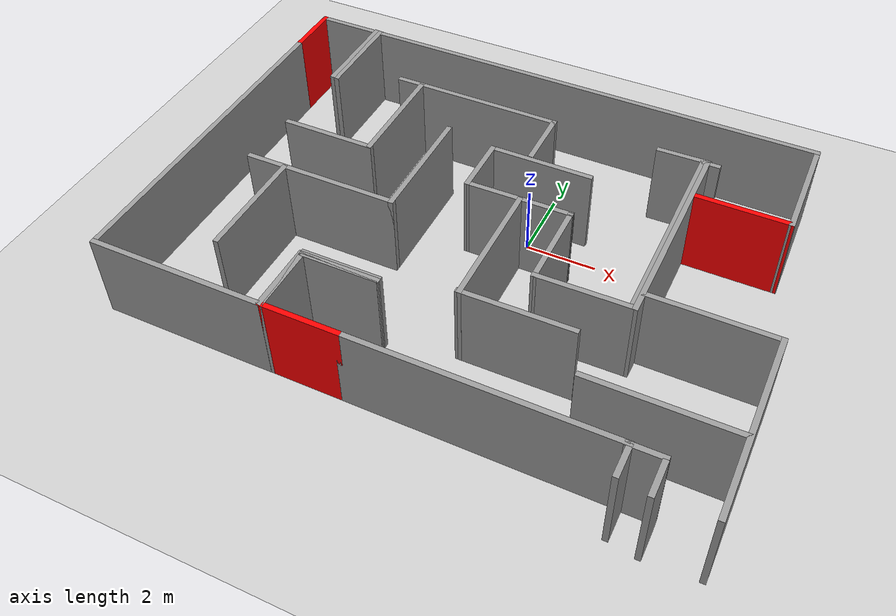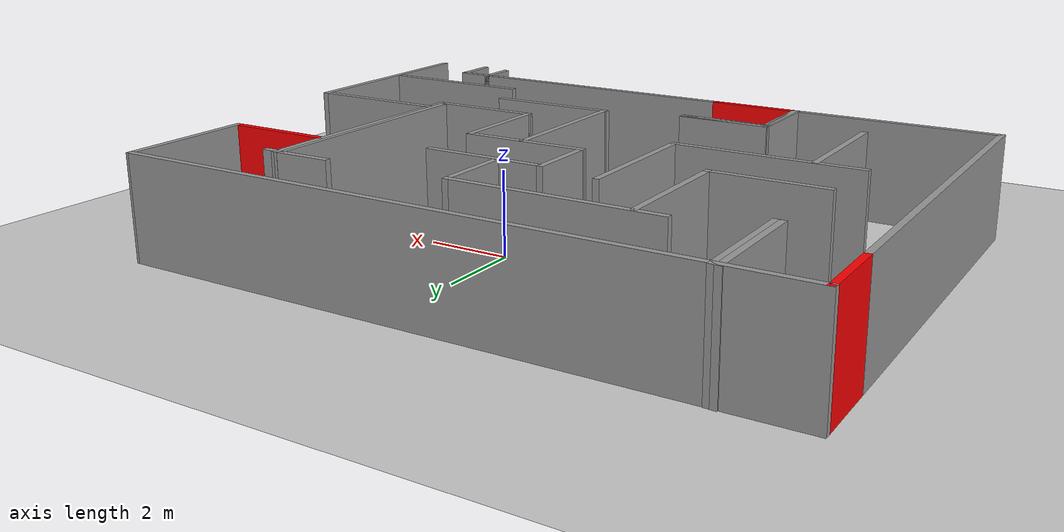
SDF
<sdf version="1.7">
 <world name="default">
  <light name="sun" type="directional">
   <pose>0 0 10 0 -0 0</pose>
   <diffuse>0.8 0.8 0.8 1</diffuse>
   <specular>0.2 0.2 0.2 1</specular>
   <attenuation>
    <range>1000</range>
    <constant>0.9</constant>
    <linear>0.01</linear>
    <quadratic>0.001</quadratic>
   </attenuation>
   <direction>-0.5 0.1 -0.9</direction>
   <spot><inner_angle>0</inner_angle><outer_angle>0</outer_angle><falloff>0</falloff></spot>
  </light>
  <model name="ground_plane">
   <static>1</static>
   <link name="link">
    <collision name="collision">
     <geometry><plane><normal>0 0 1</normal><size>100 100</size></plane></geometry>
     <surface>
      <contact><collide_bitmask>65535</collide_bitmask></contact>
      <friction><ode><mu>100</mu><mu2>50</mu2></ode></friction>
     </surface>
    </collision>
    <visual name="visual">
     <cast_shadows>0</cast_shadows>
     <geometry><plane><normal>0 0 1</normal><size>100 100</size></plane></geometry>
     <material>
      <script><uri>file://media/materials/scripts/gazebo.material</uri><name>Gazebo/Grey</name></script>
     </material>
    </visual>
   </link>
  </model>
  <gravity>0 0 -9.8</gravity>
  <magnetic_field>6e-06 2.3e-05 -4.2e-05</magnetic_field>
  <atmosphere type="adiabatic"/>
  <physics type="ode">
   <max_step_size>0.001</max_step_size>
   <real_time_factor>1</real_time_factor>
   <real_time_update_rate>1000</real_time_update_rate>
  </physics>
  <scene><ambient>0.4 0.4 0.4 1</ambient><background>0.7 0.7 0.7 1</background><shadows>1</shadows></scene>
  <spherical_coordinates>
   <surface_model>EARTH_WGS84</surface_model>
   <latitude_deg>0</latitude_deg>
   <longitude_deg>0</longitude_deg>
   <elevation>0</elevation>
   <heading_deg>0</heading_deg>
  </spherical_coordinates>
  <model name="Untitled5_0">
   <pose>-0.778124 -1.64772 0 0 -0 0</pose>
   <link name="Wall_1">
    <collision name="Wall_1_Collision">
     <geometry><box><size>3.06996 0.15 2.5</size></box></geometry>
     <pose>0 0 1.25 0 -0 0</pose>
    </collision>
    <visual name="Wall_1_Visual">
     <pose>0 0 1.25 0 -0 0</pose>
     <geometry><box><size>3.06996 0.15 2.5</size></box></geometry>
     <material>
      <script><uri>file://media/materials/scripts/gazebo.material</uri><name>Gazebo/Grey</name></script>
      <ambient>1 1 1 1</ambient>
     </material>
     <meta><layer>0</layer></meta>
    </visual>
    <pose>0.761069 0.854205 0 0 -0 0.011979</pose>
   </link>
   <link name="Wall_11">
    <collision name="Wall_11_Collision">
     <geometry><box><size>1.75 0.15 2.5</size></box></geometry>
     <pose>0 0 1.25 0 -0 0</pose>
    </collision>
    <visual name="Wall_11_Visual">
     <pose>0 0 1.25 0 -0 0</pose>
     <geometry><box><size>1.75 0.15 2.5</size></box></geometry>
     <material>
      <script><uri>file://media/materials/scripts/gazebo.material</uri><name>Gazebo/Grey</name></script>
      <ambient>1 0 0 1</ambient>
     </material>
     <meta><layer>0</layer></meta>
    </visual>
    <pose>-8.19409 5.2372 0 0 -0 -1.5708</pose>
   </link>
   <link name="Wall_13">
    <collision name="Wall_13_Collision">
     <geometry><box><size>9.75 0.15 2.5</size></box></geometry>
     <pose>0 0 1.25 0 -0 0</pose>
    </collision>
    <visual name="Wall_13_Visual">
     <pose>0 0 1.25 0 -0 0</pose>
     <geometry><box><size>9.75 0.15 2.5</size></box></geometry>
     <material>
      <script><uri>file://media/materials/scripts/gazebo.material</uri><name>Gazebo/Grey</name></script>
      <ambient>1 1 1 1</ambient>
     </material>
     <meta><layer>0</layer></meta>
    </visual>
    <pose>-8.19409 -0.362796 0 0 -0 -1.5708</pose>
   </link>
   <link name="Wall_14">
    <collision name="Wall_14_Collision">
     <geometry><box><size>5 0.15 2.5</size></box></geometry>
     <pose>0 0 1.25 0 -0 0</pose>
    </collision>
    <visual name="Wall_14_Visual">
     <pose>0 0 1.25 0 -0 0</pose>
     <geometry><box><size>5 0.15 2.5</size></box></geometry>
     <material>
      <script><uri>file://media/materials/scripts/gazebo.material</uri><name>Gazebo/Grey</name></script>
      <ambient>1 1 1 1</ambient>
     </material>
     <meta><layer>0</layer></meta>
    </visual>
    <pose>-5.76909 -5.1628 0 0 -0 0</pose>
   </link>
   <link name="Wall_16">
    <collision name="Wall_16_Collision">
     <geometry><box><size>1.75 0.15 2.5</size></box></geometry>
     <pose>0 0 1.25 0 -0 0</pose>
    </collision>
    <visual name="Wall_16_Visual">
     <pose>0 0 1.25 0 -0 0</pose>
     <geometry><box><size>1.75 0.15 2.5</size></box></geometry>
     <material>
      <script><uri>file://media/materials/scripts/gazebo.material</uri><name>Gazebo/Grey</name></script>
      <ambient>1 1 1 1</ambient>
     </material>
     <meta><layer>0</layer></meta>
    </visual>
    <pose>-0.698911 1.63671 0 0 -0 1.5708</pose>
   </link>
   <link name="Wall_17">
    <collision name="Wall_17_Collision">
     <geometry><box><size>3 0.15 2.5</size></box></geometry>
     <pose>0 0 1.25 0 -0 0</pose>
    </collision>
    <visual name="Wall_17_Visual">
     <pose>0 0 1.25 0 -0 0</pose>
     <geometry><box><size>3 0.15 2.5</size></box></geometry>
     <material>
      <script><uri>file://media/materials/scripts/gazebo.material</uri><name>Gazebo/Grey</name></script>
      <ambient>1 1 1 1</ambient>
     </material>
     <meta><layer>0</layer></meta>
    </visual>
    <pose>0.726089 2.43671 0 0 -0 0</pose>
   </link>
   <link name="Wall_19">
    <collision name="Wall_19_Collision">
     <geometry><box><size>1.75 0.15 2.5</size></box></geometry>
     <pose>0 0 1.25 0 -0 0</pose>
    </collision>
    <visual name="Wall_19_Visual">
     <pose>0 0 1.25 0 -0 0</pose>
     <geometry><box><size>1.75 0.15 2.5</size></box></geometry>
     <material>
      <script><uri>file://media/materials/scripts/gazebo.material</uri><name>Gazebo/Grey</name></script>
      <ambient>1 1 1 1</ambient>
     </material>
     <meta><layer>0</layer></meta>
    </visual>
    <pose>0.387186 3.40099 0 0 -0 1.5708</pose>
   </link>
   <link name="Wall_2">
    <collision name="Wall_2_Collision">
     <geometry><box><size>2.5 0.15 2.5</size></box></geometry>
     <pose>0 0 1.25 0 -0 0</pose>
    </collision>
    <visual name="Wall_2_Visual">
     <pose>0 0 1.25 0 -0 0</pose>
     <geometry><box><size>2.5 0.15 2.5</size></box></geometry>
     <material>
      <script><uri>file://media/materials/scripts/gazebo.material</uri><name>Gazebo/Grey</name></script>
      <ambient>1 1 1 1</ambient>
     </material>
     <meta><layer>0</layer></meta>
    </visual>
    <pose>2.22105 -0.338285 0 0 -0 -1.5708</pose>
   </link>
   <link name="Wall_20">
    <collision name="Wall_20_Collision">
     <geometry><box><size>5 0.15 2.5</size></box></geometry>
     <pose>0 0 1.25 0 -0 0</pose>
    </collision>
    <visual name="Wall_20_Visual">
     <pose>0 0 1.25 0 -0 0</pose>
     <geometry><box><size>5 0.15 2.5</size></box></geometry>
     <material>
      <script><uri>file://media/materials/scripts/gazebo.material</uri><name>Gazebo/Grey</name></script>
      <ambient>1 1 1 1</ambient>
     </material>
     <meta><layer>0</layer></meta>
    </visual>
    <pose>-2.03781 4.20099 0 0 -0 3.14159</pose>
   </link>
   <link name="Wall_22">
    <collision name="Wall_22_Collision">
     <geometry><box><size>3.25 0.15 2.5</size></box></geometry>
     <pose>0 0 1.25 0 -0 0</pose>
    </collision>
    <visual name="Wall_22_Visual">
     <pose>0 0 1.25 0 -0 0</pose>
     <geometry><box><size>3.25 0.15 2.5</size></box></geometry>
     <material>
      <script><uri>file://media/materials/scripts/gazebo.material</uri><name>Gazebo/Grey</name></script>
      <ambient>1 1 1 1</ambient>
     </material>
     <meta><layer>0</layer></meta>
    </visual>
    <pose>-3.79281 2.59099 0 0 -0 -1.5708</pose>
   </link>
   <link name="Wall_23">
    <collision name="Wall_23_Collision">
     <geometry><box><size>2.75 0.15 2.5</size></box></geometry>
     <pose>0 0 1.25 0 -0 0</pose>
    </collision>
    <visual name="Wall_23_Visual">
     <pose>0 0 1.25 0 -0 0</pose>
     <geometry><box><size>2.75 0.15 2.5</size></box></geometry>
     <material>
      <script><uri>file://media/materials/scripts/gazebo.material</uri><name>Gazebo/Grey</name></script>
      <ambient>1 1 1 1</ambient>
     </material>
     <meta><layer>0</layer></meta>
    </visual>
    <pose>-5.09281 1.04099 0 0 -0 3.14159</pose>
   </link>
   <link name="Wall_25">
    <collision name="Wall_25_Collision">
     <geometry><box><size>3.5 0.15 2.5</size></box></geometry>
     <pose>0 0 1.25 0 -0 0</pose>
    </collision>
    <visual name="Wall_25_Visual">
     <pose>0 0 1.25 0 -0 0</pose>
     <geometry><box><size>3.5 0.15 2.5</size></box></geometry>
     <material>
      <script><uri>file://media/materials/scripts/gazebo.material</uri><name>Gazebo/Grey</name></script>
      <ambient>1 1 1 1</ambient>
     </material>
     <meta><layer>0</layer></meta>
    </visual>
    <pose>-2.17281 1.00599 0 0 -0 -1.5708</pose>
   </link>
   <link name="Wall_26">
    <collision name="Wall_26_Collision">
     <geometry><box><size>4.5 0.15 2.5</size></box></geometry>
     <pose>0 0 1.25 0 -0 0</pose>
    </collision>
    <visual name="Wall_26_Visual">
     <pose>0 0 1.25 0 -0 0</pose>
     <geometry><box><size>4.5 0.15 2.5</size></box></geometry>
     <material>
      <script><uri>file://media/materials/scripts/gazebo.material</uri><name>Gazebo/Grey</name></script>
      <ambient>1 1 1 1</ambient>
     </material>
     <meta><layer>0</layer></meta>
    </visual>
    <pose>-4.34781 -0.669006 0 0 -0 3.14159</pose>
   </link>
   <link name="Wall_28">
    <collision name="Wall_28_Collision">
     <geometry><box><size>2.75 0.15 2.5</size></box></geometry>
     <pose>0 0 1.25 0 -0 0</pose>
    </collision>
    <visual name="Wall_28_Visual">
     <pose>0 0 1.25 0 -0 0</pose>
     <geometry><box><size>2.75 0.15 2.5</size></box></geometry>
     <material>
      <script><uri>file://media/materials/scripts/gazebo.material</uri><name>Gazebo/Grey</name></script>
      <ambient>1 1 1 1</ambient>
     </material>
     <meta><layer>0</layer></meta>
    </visual>
    <pose>-6.358 4.76493 0 0 -0 -1.5708</pose>
   </link>
   <link name="Wall_3">
    <collision name="Wall_3_Collision">
     <geometry><box><size>2.69606 0.15 2.5</size></box></geometry>
     <pose>0 0 1.25 0 -0 0</pose>
    </collision>
    <visual name="Wall_3_Visual">
     <pose>0 0 1.25 0 -0 0</pose>
     <geometry><box><size>2.69606 0.15 2.5</size></box></geometry>
     <material>
      <script><uri>file://media/materials/scripts/gazebo.material</uri><name>Gazebo/Grey</name></script>
      <ambient>1 1 1 1</ambient>
     </material>
     <meta><layer>0</layer></meta>
    </visual>
    <pose>3.49399 -1.49799 0 0 -0 0.012015</pose>
   </link>
   <link name="Wall_30">
    <collision name="Wall_30_Collision">
     <geometry><box><size>2 0.15 2.5</size></box></geometry>
     <pose>0 0 1.25 0 -0 0</pose>
    </collision>
    <visual name="Wall_30_Visual">
     <pose>0 0 1.25 0 -0 0</pose>
     <geometry><box><size>2 0.15 2.5</size></box></geometry>
     <material>
      <script><uri>file://media/materials/scripts/gazebo.material</uri><name>Gazebo/Grey</name></script>
      <ambient>1 1 1 1</ambient>
     </material>
     <meta><layer>0</layer></meta>
    </visual>
    <pose>-3.24477 -4.23474 0 0 -0 -1.5708</pose>
   </link>
   <link name="Wall_32">
    <collision name="Wall_32_Collision">
     <geometry><box><size>2.25 0.15 2.5</size></box></geometry>
     <pose>0 0 1.25 0 -0 0</pose>
    </collision>
    <visual name="Wall_32_Visual">
     <pose>0 0 1.25 0 -0 0</pose>
     <geometry><box><size>2.25 0.15 2.5</size></box></geometry>
     <material>
      <script><uri>file://media/materials/scripts/gazebo.material</uri><name>Gazebo/Grey</name></script>
      <ambient>1 1 1 1</ambient>
     </material>
     <meta><layer>0</layer></meta>
    </visual>
    <pose>-2.19477 -3.30974 0 0 -0 0</pose>
   </link>
   <link name="Wall_34">
    <collision name="Wall_34_Collision">
     <geometry><box><size>2.25 0.15 2.5</size></box></geometry>
     <pose>0 0 1.25 0 -0 0</pose>
    </collision>
    <visual name="Wall_34_Visual">
     <pose>0 0 1.25 0 -0 0</pose>
     <geometry><box><size>2.25 0.15 2.5</size></box></geometry>
     <material>
      <script><uri>file://media/materials/scripts/gazebo.material</uri><name>Gazebo/Grey</name></script>
      <ambient>1 0 0 1</ambient>
     </material>
     <meta><layer>0</layer></meta>
    </visual>
    <pose>-2.19477 -5.15974 0 0 -0 0</pose>
   </link>
   <link name="Wall_36">
    <collision name="Wall_36_Collision">
     <geometry><box><size>7.25 0.15 2.5</size></box></geometry>
     <pose>0 0 1.25 0 -0 0</pose>
    </collision>
    <visual name="Wall_36_Visual">
     <pose>0 0 1.25 0 -0 0</pose>
     <geometry><box><size>7.25 0.15 2.5</size></box></geometry>
     <material>
      <script><uri>file://media/materials/scripts/gazebo.material</uri><name>Gazebo/Grey</name></script>
      <ambient>1 1 1 1</ambient>
     </material>
     <meta><layer>0</layer></meta>
    </visual>
    <pose>2.40523 -5.15974 0 0 -0 0</pose>
   </link>
   <link name="Wall_38">
    <collision name="Wall_38_Collision">
     <geometry><box><size>3.75 0.15 2.5</size></box></geometry>
     <pose>0 0 1.25 0 -0 0</pose>
    </collision>
    <visual name="Wall_38_Visual">
     <pose>0 0 1.25 0 -0 0</pose>
     <geometry><box><size>3.75 0.15 2.5</size></box></geometry>
     <material>
      <script><uri>file://media/materials/scripts/gazebo.material</uri><name>Gazebo/Grey</name></script>
      <ambient>1 1 1 1</ambient>
     </material>
     <meta><layer>0</layer></meta>
    </visual>
    <pose>0.810099 -0.970474 0 0 -0 -1.5708</pose>
   </link>
   <link name="Wall_39">
    <collision name="Wall_39_Collision">
     <geometry><box><size>3.16894 0.15 2.5</size></box></geometry>
     <pose>0 0 1.25 0 -0 0</pose>
    </collision>
    <visual name="Wall_39_Visual">
     <pose>0 0 1.25 0 -0 0</pose>
     <geometry><box><size>3.16894 0.15 2.5</size></box></geometry>
     <material>
      <script><uri>file://media/materials/scripts/gazebo.material</uri><name>Gazebo/Grey</name></script>
      <ambient>1 1 1 1</ambient>
     </material>
     <meta><layer>0</layer></meta>
    </visual>
    <pose>2.2889 -2.75518 0 0 -0 0.010133</pose>
   </link>
   <link name="Wall_4">
    <collision name="Wall_4_Collision">
     <geometry><box><size>6 0.15 2.5</size></box></geometry>
     <pose>0 0 1.25 0 -0 0</pose>
    </collision>
    <visual name="Wall_4_Visual">
     <pose>0 0 1.25 0 -0 0</pose>
     <geometry><box><size>6 0.15 2.5</size></box></geometry>
     <material>
      <script><uri>file://media/materials/scripts/gazebo.material</uri><name>Gazebo/Grey</name></script>
      <ambient>1 1 1 1</ambient>
     </material>
     <meta><layer>0</layer></meta>
    </visual>
    <pose>4.80535 1.4423 0 0 -0 1.56812</pose>
   </link>
   <link name="Wall_41">
    <collision name="Wall_41_Collision">
     <geometry><box><size>3.5 0.15 2.5</size></box></geometry>
     <pose>0 0 1.25 0 -0 0</pose>
    </collision>
    <visual name="Wall_41_Visual">
     <pose>0 0 1.25 0 -0 0</pose>
     <geometry><box><size>3.5 0.15 2.5</size></box></geometry>
     <material>
      <script><uri>file://media/materials/scripts/gazebo.material</uri><name>Gazebo/Grey</name></script>
      <ambient>1 1 1 1</ambient>
     </material>
     <meta><layer>0</layer></meta>
    </visual>
    <pose>6.5191 -0.964934 0 0 -0 0</pose>
   </link>
   <link name="Wall_42">
    <collision name="Wall_42_Collision">
     <geometry><box><size>5.25 0.15 2.5</size></box></geometry>
     <pose>0 0 1.25 0 -0 0</pose>
    </collision>
    <visual name="Wall_42_Visual">
     <pose>0 0 1.25 0 -0 0</pose>
     <geometry><box><size>5.25 0.15 2.5</size></box></geometry>
     <material>
      <script><uri>file://media/materials/scripts/gazebo.material</uri><name>Gazebo/Grey</name></script>
      <ambient>1 1 1 1</ambient>
     </material>
     <meta><layer>0</layer></meta>
    </visual>
    <pose>8.1941 -3.51493 0 0 -0 -1.5708</pose>
   </link>
   <link name="Wall_44">
    <collision name="Wall_44_Collision">
     <geometry><box><size>1 0.15 2.5</size></box></geometry>
     <pose>0 0 1.25 0 -0 0</pose>
    </collision>
    <visual name="Wall_44_Visual">
     <pose>0 0 1.25 0 -0 0</pose>
     <geometry><box><size>1 0.15 2.5</size></box></geometry>
     <material>
      <script><uri>file://media/materials/scripts/gazebo.material</uri><name>Gazebo/Grey</name></script>
      <ambient>1 1 1 1</ambient>
     </material>
     <meta><layer>0</layer></meta>
    </visual>
    <pose>5.95523 -5.58474 0 0 -0 -1.5708</pose>
   </link>
   <link name="Wall_46">
    <collision name="Wall_46_Collision">
     <geometry><box><size>4 0.15 2.5</size></box></geometry>
     <pose>0 0 1.25 0 -0 0</pose>
    </collision>
    <visual name="Wall_46_Visual">
     <pose>0 0 1.25 0 -0 0</pose>
     <geometry><box><size>4 0.15 2.5</size></box></geometry>
     <material>
      <script><uri>file://media/materials/scripts/gazebo.material</uri><name>Gazebo/Grey</name></script>
      <ambient>1 1 1 1</ambient>
     </material>
     <meta><layer>0</layer></meta>
    </visual>
    <pose>6.2306 -3.90342 0 0 -0 3.14159</pose>
   </link>
   <link name="Wall_48">
    <collision name="Wall_48_Collision">
     <geometry><box><size>3.25 0.15 2.5</size></box></geometry>
     <pose>0 0 1.25 0 -0 0</pose>
    </collision>
    <visual name="Wall_48_Visual">
     <pose>0 0 1.25 0 -0 0</pose>
     <geometry><box><size>3.25 0.15 2.5</size></box></geometry>
     <material>
      <script><uri>file://media/materials/scripts/gazebo.material</uri><name>Gazebo/Grey</name></script>
      <ambient>1 1 1 1</ambient>
     </material>
     <meta><layer>0</layer></meta>
    </visual>
    <pose>-5.43894 -2.25142 0 0 -0 -1.5708</pose>
   </link>
   <link name="Wall_5">
    <collision name="Wall_5_Collision">
     <geometry><box><size>1.51618 0.15 2.5</size></box></geometry>
     <pose>0 0 1.25 0 -0 0</pose>
    </collision>
    <visual name="Wall_5_Visual">
     <pose>0 0 1.25 0 -0 0</pose>
     <geometry><box><size>1.51618 0.15 2.5</size></box></geometry>
     <material>
      <script><uri>file://media/materials/scripts/gazebo.material</uri><name>Gazebo/Grey</name></script>
      <ambient>1 1 1 1</ambient>
     </material>
     <meta><layer>0</layer></meta>
    </visual>
    <pose>4.14183 4.35201 0 0 -0 -3.1192</pose>
   </link>
   <link name="Wall_7">
    <collision name="Wall_7_Collision">
     <geometry><box><size>2.75 0.15 2.5</size></box></geometry>
     <pose>0 0 1.25 0 -0 0</pose>
    </collision>
    <visual name="Wall_7_Visual">
     <pose>0 0 1.25 0 -0 0</pose>
     <geometry><box><size>2.75 0.15 2.5</size></box></geometry>
     <material>
      <script><uri>file://media/materials/scripts/gazebo.material</uri><name>Gazebo/Grey</name></script>
      <ambient>1 0 0 1</ambient>
     </material>
     <meta><layer>0</layer></meta>
    </visual>
    <pose>6.1406 2.9372 0 0 -0 0</pose>
   </link>
   <link name="Wall_8">
    <collision name="Wall_8_Collision">
     <geometry><box><size>3.25 0.15 2.5</size></box></geometry>
     <pose>0 0 1.25 0 -0 0</pose>
    </collision>
    <visual name="Wall_8_Visual">
     <pose>0 0 1.25 0 -0 0</pose>
     <geometry><box><size>3.25 0.15 2.5</size></box></geometry>
     <material>
      <script><uri>file://media/materials/scripts/gazebo.material</uri><name>Gazebo/Grey</name></script>
      <ambient>1 1 1 1</ambient>
     </material>
     <meta><layer>0</layer></meta>
    </visual>
    <pose>7.42904 4.4872 0 0 -0 1.58572</pose>
   </link>
   <link name="Wall_9">
    <collision name="Wall_9_Collision">
     <geometry><box><size>15.75 0.15 2.5</size></box></geometry>
     <pose>0 0 1.25 0 -0 0</pose>
    </collision>
    <visual name="Wall_9_Visual">
     <pose>0 0 1.25 0 -0 0</pose>
     <geometry><box><size>15.75 0.15 2.5</size></box></geometry>
     <material>
      <script><uri>file://media/materials/scripts/gazebo.material</uri><name>Gazebo/Grey</name></script>
      <ambient>1 1 1 1</ambient>
     </material>
     <meta><layer>0</layer></meta>
    </visual>
    <pose>-0.394095 6.0372 0 0 -0 3.14159</pose>
   </link>
   <static>1</static>
  </model>
  <model name="Untitle">
   <pose>-0.51562 -1.2075 0 0 -0 0</pose>
   <link name="Wall_1">
    <collision name="Wall_1_Collision">
     <geometry><box><size>5.75 0.15 2.5</size></box></geometry>
     <pose>0 0 1.25 0 -0 0</pose>
    </collision>
    <visual name="Wall_1_Visual">
     <pose>0 0 1.25 0 -0 0</pose>
     <geometry><box><size>5.75 0.15 2.5</size></box></geometry>
     <material>
      <script><uri>file://media/materials/scripts/gazebo.material</uri><name>Gazebo/Grey</name></script>
      <ambient>1 1 1 1</ambient>
     </material>
     <meta><layer>0</layer></meta>
    </visual>
    <pose>4.43562 1.025 0 0 -0 -1.5708</pose>
   </link>
   <link name="Wall_3">
    <collision name="Wall_3_Collision">
     <geometry><box><size>2.75 0.15 2.5</size></box></geometry>
     <pose>0 0 1.25 0 -0 0</pose>
    </collision>
    <visual name="Wall_3_Visual">
     <pose>0 0 1.25 0 -0 0</pose>
     <geometry><box><size>2.75 0.15 2.5</size></box></geometry>
     <material>
      <script><uri>file://media/materials/scripts/gazebo.material</uri><name>Gazebo/Grey</name></script>
      <ambient>1 1 1 1</ambient>
     </material>
     <meta><layer>0</layer></meta>
    </visual>
    <pose>-6.48938 4.315 0 0 -0 -1.5708</pose>
   </link>
   <link name="Wall_5">
    <collision name="Wall_5_Collision">
     <geometry><box><size>2 0.15 2.5</size></box></geometry>
     <pose>0 0 1.25 0 -0 0</pose>
    </collision>
    <visual name="Wall_5_Visual">
     <pose>0 0 1.25 0 -0 0</pose>
     <geometry><box><size>2 0.15 2.5</size></box></geometry>
     <material>
      <script><uri>file://media/materials/scripts/gazebo.material</uri><name>Gazebo/Grey</name></script>
      <ambient>1 1 1 1</ambient>
     </material>
     <meta><layer>0</layer></meta>
    </visual>
    <pose>-3.55688 -4.66 0 0 -0 -1.5708</pose>
   </link>
   <link name="Wall_7">
    <collision name="Wall_7_Collision">
     <geometry><box><size>1 0.15 2.5</size></box></geometry>
     <pose>0 0 1.25 0 -0 0</pose>
    </collision>
    <visual name="Wall_7_Visual">
     <pose>0 0 1.25 0 -0 0</pose>
     <geometry><box><size>1 0.15 2.5</size></box></geometry>
     <material>
      <script><uri>file://media/materials/scripts/gazebo.material</uri><name>Gazebo/Grey</name></script>
      <ambient>1 1 1 1</ambient>
     </material>
     <meta><layer>0</layer></meta>
    </visual>
    <pose>6.06438 -5.615 0 0 -0 0</pose>
   </link>
   <static>1</static>
  </model>
  <model name="Untitled1">
   <pose>0.133743 -1.14229 0 0 -0 0</pose>
   <link name="Wall_0">
    <collision name="Wall_0_Collision">
     <geometry><box><size>2.25 0.15 2.5</size></box></geometry>
     <pose>0 0 1.25 0 -0 0</pose>
    </collision>
    <visual name="Wall_0_Visual">
     <pose>0 0 1.25 0 -0 0</pose>
     <geometry><box><size>2.25 0.15 2.5</size></box></geometry>
     <material>
      <script><uri>file://media/materials/scripts/gazebo.material</uri><name>Gazebo/Grey</name></script>
      <ambient>1 1 1 1</ambient>
     </material>
     <meta><layer>0</layer></meta>
    </visual>
    <pose>-3.14718 -3.81834 0 0 -0 0</pose>
   </link>
   <link name="Wall_2">
    <collision name="Wall_2_Collision">
     <geometry><box><size>0.5 0.15 2.5</size></box></geometry>
     <pose>0 0 1.25 0 -0 0</pose>
    </collision>
    <visual name="Wall_2_Visual">
     <pose>0 0 1.25 0 -0 0</pose>
     <geometry><box><size>0.5 0.15 2.5</size></box></geometry>
     <material>
      <script><uri>file://media/materials/scripts/gazebo.material</uri><name>Gazebo/Grey</name></script>
      <ambient>1 1 1 1</ambient>
     </material>
     <meta><layer>0</layer></meta>
    </visual>
    <pose>4.02218 3.81834 0 0 -0 0</pose>
   </link>
   <static>1</static>
  </model>
  <model name="Untitled11">
   <pose>3.02505 -3.98634 0 0 -0 0</pose>
   <link name="Wall_0">
    <collision name="Wall_0_Collision">
     <geometry><box><size>1 0.15 2.5</size></box></geometry>
     <pose>0 0 1.25 0 -0 0</pose>
    </collision>
    <visual name="Wall_0_Visual">
     <pose>0 0 1.25 0 -0 0</pose>
     <geometry><box><size>1 0.15 2.5</size></box></geometry>
     <material>
      <script><uri>file://media/materials/scripts/gazebo.material</uri><name>Gazebo/Grey</name></script>
      <ambient>1 1 1 1</ambient>
     </material>
     <meta><layer>0</layer></meta>
    </visual>
    <pose>2.95508 -3.37559 0 0 -0 -1.5708</pose>
   </link>
   <static>1</static>
  </model>
  <model name="Untitled12">
   <pose>-2.02034 -2.49681 0 0 -0 0</pose>
   <link name="Wall_0">
    <collision name="Wall_0_Collision">
     <geometry><box><size>2.25 0.15 2.5</size></box></geometry>
     <pose>0 0 1.25 0 -0 0</pose>
    </collision>
    <visual name="Wall_0_Visual">
     <pose>0 0 1.25 0 -0 0</pose>
     <geometry><box><size>2.25 0.15 2.5</size></box></geometry>
     <material>
      <script><uri>file://media/materials/scripts/gazebo.material</uri><name>Gazebo/Grey</name></script>
      <ambient>1 1 1 1</ambient>
     </material>
     <meta><layer>0</layer></meta>
    </visual>
    <pose>-0.9525 -2.3925 0 0 -0 0</pose>
   </link>
   <static>1</static>
  </model>
 </world>
</sdf>
